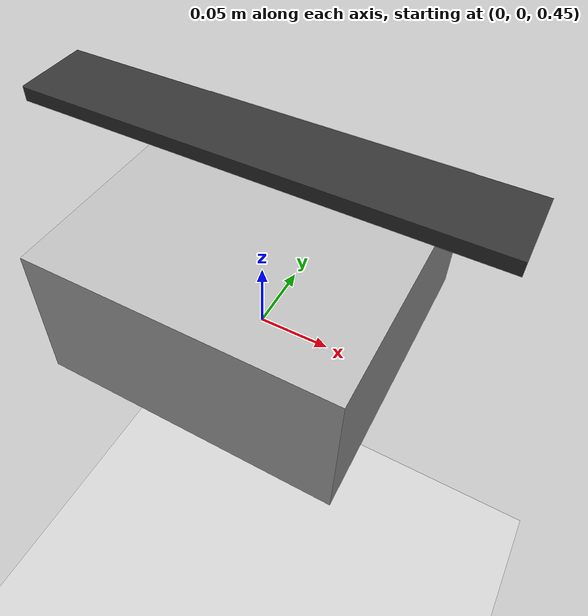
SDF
<?xml version="1.0" ?>
<sdf version="1.6">
  <world name="empty">
    <physics name="1ms" type="ignored">
      <max_step_size>0.001</max_step_size>
      <real_time_factor>1.0</real_time_factor>
    </physics>
    <plugin
      filename="gz-sim-physics-system"
      name="gz::sim::systems::Physics">
    </plugin>
    <plugin
      filename="gz-sim-user-commands-system"
      name="gz::sim::systems::UserCommands">
    </plugin>
    <plugin
      filename="gz-sim-scene-broadcaster-system"
      name="gz::sim::systems::SceneBroadcaster">
    </plugin>
    <plugin
      filename="gz-sim-contact-system"
      name="gz::sim::systems::Contact">
    </plugin>

    <light type="directional" name="sun">
      <cast_shadows>true</cast_shadows>
      <pose>0 0 10 0 0 0</pose>
      <diffuse>0.8 0.8 0.8 1</diffuse>
      <specular>0.2 0.2 0.2 1</specular>
      <attenuation>
        <range>1000</range>
        <constant>0.9</constant>
        <linear>0.01</linear>
        <quadratic>0.001</quadratic>
      </attenuation>
      <direction>-0.5 0.1 -0.9</direction>
    </light>

    <model name="ground_plane">
      <static>true</static>
      <link name="link">
        <collision name="collision">
          <geometry>
            <plane>
              <normal>0 0 1</normal>
              <size>100 100</size>
            </plane>
          </geometry>
        </collision>
        <visual name="visual">
          <geometry>
            <plane>
              <normal>0 0 1</normal>
              <size>100 100</size>
            </plane>
          </geometry>
          <material>
            <ambient>0.8 0.8 0.8 1</ambient>
            <diffuse>0.8 0.8 0.8 1</diffuse>
            <specular>0.8 0.8 0.8 1</specular>
          </material>
        </visual>
      </link>
    </model>

    <include>
      <uri>model://box_motor_drone</uri>
      <pose>0 0 0.5 0 0 0</pose>
    </include>

  </world>
</sdf>

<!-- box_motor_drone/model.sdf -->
<sdf version="1.9">
  <model name="box_motor_drone">
    <static>false</static>
    <pose>0 0 0.3 0 0 0</pose>

    <!-- Base box body -->
    <link name="base_link">
      <pose>0 0 0 0 0 0</pose>
      <inertial>
        <mass>10.0</mass>
        <inertia>
          <ixx>0.1</ixx>
          <iyy>0.1</iyy>
          <izz>0.1</izz>
        </inertia>
      </inertial>
      <collision name="base_collision">
        <geometry>
          <box>
            <size>0.2 0.2 0.1</size>
          </box>
        </geometry>
      </collision>
      <visual name="base_visual">
        <geometry>
          <box>
            <size>0.2 0.2 0.1</size>
          </box>
        </geometry>
      </visual>
    </link>

    <!-- Rotor with elliptical visual -->
    <link name="rotor_0">
      <pose>0 0 0.1 0 0 0</pose>
      <inertial>
        <mass>0.05</mass>
        <inertia>
          <ixx>1e-5</ixx>
          <iyy>1e-5</iyy>
          <izz>2e-5</izz>
        </inertia>
      </inertial>
      <collision name="rotor_collision">
        <geometry>
          <box>
            <size>0.3 0.05 0.01</size>
          </box>
        </geometry>
      </collision>
      <visual name="rotor_visual">
        <geometry>
          <box>
            <size>0.3 0.05 0.01</size>  <!-- Elliptical-like shape -->
          </box>
        </geometry>
        <material>
          <ambient>0.1 0.1 0.1 1</ambient>
          <diffuse>0.2 0.2 0.2 1</diffuse>
        </material>
      </visual>
    </link>

    <joint name="rotor_0_joint" type="revolute">
      <parent>base_link</parent>
      <child>rotor_0</child>
      <axis>
        <xyz>0 0 1</xyz>
        <limit>
          <lower>-1e16</lower>
          <upper>1e16</upper>
        </limit>
      </axis>
    </joint>

    <plugin name="gz::sim::systems::MulticopterMotorModel" filename="gz-sim-multicopter-motor-model-system">
      <jointName>rotor_0_joint</jointName>
      <linkName>rotor_0</linkName>
      <turningDirection>ccw</turningDirection>
      <timeConstantUp>0.01</timeConstantUp>
      <timeConstantDown>0.02</timeConstantDown>
      <maxRotVelocity>2000</maxRotVelocity>
      <motorConstant>1e-5</motorConstant>
      <momentConstant>0.02</momentConstant>
      <commandSubTopic>command/motor_speed</commandSubTopic>
      <motorNumber>0</motorNumber>
      <rotorDragCoefficient>1e-5</rotorDragCoefficient>
      <rollingMomentCoefficient>1e-6</rollingMomentCoefficient>
      <rotorVelocitySlowdownSim>10</rotorVelocitySlowdownSim>
      <motorType>velocity</motorType>
    </plugin>
  </model>
</sdf>
